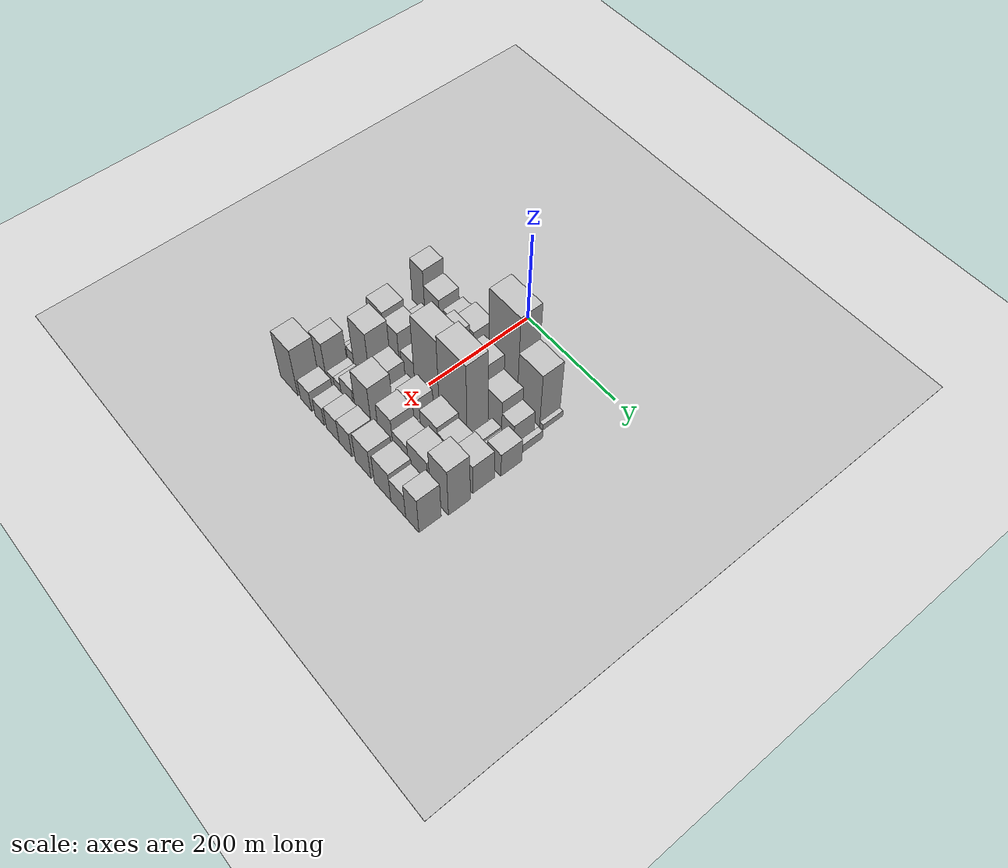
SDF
<sdf version="1.6">
 <world name="default">
  <include><name>ground_plane_1</name><uri>model://HANNAS_ground_plane</uri></include>
  <include>
   <name>ground_plane_2</name>
   <uri>model://HANNAS_ground_plane</uri>
   <pose>100 0 0  0 0 0</pose>
  </include>
  <model name="building_20">
   <static>1</static>
   <pose>100.0000 -129.2822 0 0.000000 0.000000 0.000000</pose>
   <link name="link">
    <pose>0 0 52.50 0 0 0</pose>
    <collision name="collision"><geometry><box><size>40.0000 32.5449 105.0000</size></box></geometry></collision>
    <visual name="visual">
     <cast_shadows>0</cast_shadows>
     <geometry><box><size>40.0000 32.5449 105.0000</size></box></geometry>
     <material>
      <script>
       <uri>model://HANNAS_wall/materials/scripts</uri>
       <uri>model://HANNAS_wall/materials/textures</uri>
       <name>vrc/HANNAS_wall</name>
      </script>
     </material>
    </visual>
   </link>
  </model>
  <model name="building_21">
   <static>1</static>
   <pose>100.0000 -93.9875 0 0.000000 0.000000 0.000000</pose>
   <link name="link">
    <pose>0 0 34.50 0 0 0</pose>
    <collision name="collision"><geometry><box><size>40.0000 38.0445 69.0000</size></box></geometry></collision>
    <visual name="visual">
     <cast_shadows>0</cast_shadows>
     <geometry><box><size>40.0000 38.0445 69.0000</size></box></geometry>
     <material>
      <script>
       <uri>model://HANNAS_wall/materials/scripts</uri>
       <uri>model://HANNAS_wall/materials/textures</uri>
       <name>vrc/HANNAS_wall</name>
      </script>
     </material>
    </visual>
   </link>
  </model>
  <model name="building_22">
   <static>1</static>
   <pose>100.0000 -49.4875 0 0.000000 0.000000 0.000000</pose>
   <link name="link">
    <pose>0 0 28.50 0 0 0</pose>
    <collision name="collision"><geometry><box><size>40.0000 30.9556 57.0000</size></box></geometry></collision>
    <visual name="visual">
     <cast_shadows>0</cast_shadows>
     <geometry><box><size>40.0000 30.9556 57.0000</size></box></geometry>
     <material>
      <script>
       <uri>model://HANNAS_wall/materials/scripts</uri>
       <uri>model://HANNAS_wall/materials/textures</uri>
       <name>vrc/HANNAS_wall</name>
      </script>
     </material>
    </visual>
   </link>
  </model>
  <model name="building_23">
   <static>1</static>
   <pose>100.0000 -12.2931 0 0.000000 0.000000 0.000000</pose>
   <link name="link">
    <pose>0 0 37.50 0 0 0</pose>
    <collision name="collision"><geometry><box><size>40.0000 43.4332 75.0000</size></box></geometry></collision>
    <visual name="visual">
     <cast_shadows>0</cast_shadows>
     <geometry><box><size>40.0000 43.4332 75.0000</size></box></geometry>
     <material>
      <script>
       <uri>model://HANNAS_wall/materials/scripts</uri>
       <uri>model://HANNAS_wall/materials/textures</uri>
       <name>vrc/HANNAS_wall</name>
      </script>
     </material>
    </visual>
   </link>
  </model>
  <model name="building_24">
   <static>1</static>
   <pose>100.0000 23.1443 0 0.000000 0.000000 0.000000</pose>
   <link name="link">
    <pose>0 0 7.50 0 0 0</pose>
    <collision name="collision"><geometry><box><size>40.0000 7.4417 15.0000</size></box></geometry></collision>
    <visual name="visual">
     <cast_shadows>0</cast_shadows>
     <geometry><box><size>40.0000 7.4417 15.0000</size></box></geometry>
     <material>
      <script>
       <uri>model://HANNAS_wall/materials/scripts</uri>
       <uri>model://HANNAS_wall/materials/textures</uri>
       <name>vrc/HANNAS_wall</name>
      </script>
     </material>
    </visual>
   </link>
  </model>
  <model name="building_25">
   <static>1</static>
   <pose>100.0000 32.5370 0 0.000000 0.000000 0.000000</pose>
   <link name="link">
    <pose>0 0 13.50 0 0 0</pose>
    <collision name="collision"><geometry><box><size>40.0000 11.3437 27.0000</size></box></geometry></collision>
    <visual name="visual">
     <cast_shadows>0</cast_shadows>
     <geometry><box><size>40.0000 11.3437 27.0000</size></box></geometry>
     <material>
      <script>
       <uri>model://HANNAS_wall/materials/scripts</uri>
       <uri>model://HANNAS_wall/materials/textures</uri>
       <name>vrc/HANNAS_wall</name>
      </script>
     </material>
    </visual>
   </link>
  </model>
  <model name="building_26">
   <static>1</static>
   <pose>100.0000 78.6718 0 0.000000 0.000000 0.000000</pose>
   <link name="link">
    <pose>0 0 109.50 0 0 0</pose>
    <collision name="collision"><geometry><box><size>40.0000 66.9260 219.0000</size></box></geometry></collision>
    <visual name="visual">
     <cast_shadows>0</cast_shadows>
     <geometry><box><size>40.0000 66.9260 219.0000</size></box></geometry>
     <material>
      <script>
       <uri>model://HANNAS_wall/materials/scripts</uri>
       <uri>model://HANNAS_wall/materials/textures</uri>
       <name>vrc/HANNAS_wall</name>
      </script>
     </material>
    </visual>
   </link>
  </model>
  <model name="building_27">
   <static>1</static>
   <pose>100.0000 137.7826 0 0.000000 0.000000 0.000000</pose>
   <link name="link">
    <pose>0 0 67.50 0 0 0</pose>
    <collision name="collision"><geometry><box><size>40.0000 51.2957 135.0000</size></box></geometry></collision>
    <visual name="visual">
     <cast_shadows>0</cast_shadows>
     <geometry><box><size>40.0000 51.2957 135.0000</size></box></geometry>
     <material>
      <script>
       <uri>model://HANNAS_wall/materials/scripts</uri>
       <uri>model://HANNAS_wall/materials/textures</uri>
       <name>vrc/HANNAS_wall</name>
      </script>
     </material>
    </visual>
   </link>
  </model>
  <model name="building_28">
   <static>1</static>
   <pose>100.0000 167.0437 0 0.000000 0.000000 0.000000</pose>
   <link name="link">
    <pose>0 0 7.50 0 0 0</pose>
    <collision name="collision"><geometry><box><size>40.0000 7.2264 15.0000</size></box></geometry></collision>
    <visual name="visual">
     <cast_shadows>0</cast_shadows>
     <geometry><box><size>40.0000 7.2264 15.0000</size></box></geometry>
     <material>
      <script>
       <uri>model://HANNAS_wall/materials/scripts</uri>
       <uri>model://HANNAS_wall/materials/textures</uri>
       <name>vrc/HANNAS_wall</name>
      </script>
     </material>
    </visual>
   </link>
  </model>
  <model name="building_66">
   <static>1</static>
   <pose>149.0000 -112.0971 0 0.000000 0.000000 0.000000</pose>
   <link name="link">
    <pose>0 0 9.00 0 0 0</pose>
    <collision name="collision"><geometry><box><size>40.0000 8.2434 18.0000</size></box></geometry></collision>
    <visual name="visual">
     <cast_shadows>0</cast_shadows>
     <geometry><box><size>40.0000 8.2434 18.0000</size></box></geometry>
     <material>
      <script>
       <uri>model://HANNAS_wall/materials/scripts</uri>
       <uri>model://HANNAS_wall/materials/textures</uri>
       <name>vrc/HANNAS_wall</name>
      </script>
     </material>
    </visual>
   </link>
  </model>
  <model name="building_67">
   <static>1</static>
   <pose>149.0000 -96.3185 0 0.000000 0.000000 0.000000</pose>
   <link name="link">
    <pose>0 0 19.50 0 0 0</pose>
    <collision name="collision"><geometry><box><size>40.0000 23.3137 39.0000</size></box></geometry></collision>
    <visual name="visual">
     <cast_shadows>0</cast_shadows>
     <geometry><box><size>40.0000 23.3137 39.0000</size></box></geometry>
     <material>
      <script>
       <uri>model://HANNAS_wall/materials/scripts</uri>
       <uri>model://HANNAS_wall/materials/textures</uri>
       <name>vrc/HANNAS_wall</name>
      </script>
     </material>
    </visual>
   </link>
  </model>
  <model name="building_68">
   <static>1</static>
   <pose>149.0000 -69.2419 0 0.000000 0.000000 0.000000</pose>
   <link name="link">
    <pose>0 0 30.00 0 0 0</pose>
    <collision name="collision"><geometry><box><size>40.0000 30.8396 60.0000</size></box></geometry></collision>
    <visual name="visual">
     <cast_shadows>0</cast_shadows>
     <geometry><box><size>40.0000 30.8396 60.0000</size></box></geometry>
     <material>
      <script>
       <uri>model://HANNAS_wall/materials/scripts</uri>
       <uri>model://HANNAS_wall/materials/textures</uri>
       <name>vrc/HANNAS_wall</name>
      </script>
     </material>
    </visual>
   </link>
  </model>
  <model name="building_69">
   <static>1</static>
   <pose>149.0000 -43.5027 0 0.000000 0.000000 0.000000</pose>
   <link name="link">
    <pose>0 0 18.00 0 0 0</pose>
    <collision name="collision"><geometry><box><size>40.0000 20.6387 36.0000</size></box></geometry></collision>
    <visual name="visual">
     <cast_shadows>0</cast_shadows>
     <geometry><box><size>40.0000 20.6387 36.0000</size></box></geometry>
     <material>
      <script>
       <uri>model://HANNAS_wall/materials/scripts</uri>
       <uri>model://HANNAS_wall/materials/textures</uri>
       <name>vrc/HANNAS_wall</name>
      </script>
     </material>
    </visual>
   </link>
  </model>
  <model name="building_70">
   <static>1</static>
   <pose>149.0000 -7.0303 0 0.000000 0.000000 0.000000</pose>
   <link name="link">
    <pose>0 0 52.50 0 0 0</pose>
    <collision name="collision"><geometry><box><size>40.0000 36.3060 105.0000</size></box></geometry></collision>
    <visual name="visual">
     <cast_shadows>0</cast_shadows>
     <geometry><box><size>40.0000 36.3060 105.0000</size></box></geometry>
     <material>
      <script>
       <uri>model://HANNAS_wall/materials/scripts</uri>
       <uri>model://HANNAS_wall/materials/textures</uri>
       <name>vrc/HANNAS_wall</name>
      </script>
     </material>
    </visual>
   </link>
  </model>
  <model name="building_71">
   <static>1</static>
   <pose>149.0000 24.2929 0 0.000000 0.000000 0.000000</pose>
   <link name="link">
    <pose>0 0 25.50 0 0 0</pose>
    <collision name="collision"><geometry><box><size>40.0000 26.3406 51.0000</size></box></geometry></collision>
    <visual name="visual">
     <cast_shadows>0</cast_shadows>
     <geometry><box><size>40.0000 26.3406 51.0000</size></box></geometry>
     <material>
      <script>
       <uri>model://HANNAS_wall/materials/scripts</uri>
       <uri>model://HANNAS_wall/materials/textures</uri>
       <name>vrc/HANNAS_wall</name>
      </script>
     </material>
    </visual>
   </link>
  </model>
  <model name="building_72">
   <static>1</static>
   <pose>149.0000 67.7533 0 0.000000 0.000000 0.000000</pose>
   <link name="link">
    <pose>0 0 58.50 0 0 0</pose>
    <collision name="collision"><geometry><box><size>40.0000 46.5802 117.0000</size></box></geometry></collision>
    <visual name="visual">
     <cast_shadows>0</cast_shadows>
     <geometry><box><size>40.0000 46.5802 117.0000</size></box></geometry>
     <material>
      <script>
       <uri>model://HANNAS_wall/materials/scripts</uri>
       <uri>model://HANNAS_wall/materials/textures</uri>
       <name>vrc/HANNAS_wall</name>
      </script>
     </material>
    </visual>
   </link>
  </model>
  <model name="building_73">
   <static>1</static>
   <pose>149.0000 112.6125 0 0.000000 0.000000 0.000000</pose>
   <link name="link">
    <pose>0 0 40.50 0 0 0</pose>
    <collision name="collision"><geometry><box><size>40.0000 43.1380 81.0000</size></box></geometry></collision>
    <visual name="visual">
     <cast_shadows>0</cast_shadows>
     <geometry><box><size>40.0000 43.1380 81.0000</size></box></geometry>
     <material>
      <script>
       <uri>model://HANNAS_wall/materials/scripts</uri>
       <uri>model://HANNAS_wall/materials/textures</uri>
       <name>vrc/HANNAS_wall</name>
      </script>
     </material>
    </visual>
   </link>
  </model>
  <model name="building_74">
   <static>1</static>
   <pose>149.0000 148.1438 0 0.000000 0.000000 0.000000</pose>
   <link name="link">
    <pose>0 0 25.50 0 0 0</pose>
    <collision name="collision"><geometry><box><size>40.0000 27.9247 51.0000</size></box></geometry></collision>
    <visual name="visual">
     <cast_shadows>0</cast_shadows>
     <geometry><box><size>40.0000 27.9247 51.0000</size></box></geometry>
     <material>
      <script>
       <uri>model://HANNAS_wall/materials/scripts</uri>
       <uri>model://HANNAS_wall/materials/textures</uri>
       <name>vrc/HANNAS_wall</name>
      </script>
     </material>
    </visual>
   </link>
  </model>
  <model name="building_75">
   <static>1</static>
   <pose>149.0000 175.8028 0 0.000000 0.000000 0.000000</pose>
   <link name="link">
    <pose>0 0 10.50 0 0 0</pose>
    <collision name="collision"><geometry><box><size>40.0000 9.3933 21.0000</size></box></geometry></collision>
    <visual name="visual">
     <cast_shadows>0</cast_shadows>
     <geometry><box><size>40.0000 9.3933 21.0000</size></box></geometry>
     <material>
      <script>
       <uri>model://HANNAS_wall/materials/scripts</uri>
       <uri>model://HANNAS_wall/materials/textures</uri>
       <name>vrc/HANNAS_wall</name>
      </script>
     </material>
    </visual>
   </link>
  </model>
  <model name="building_113">
   <static>1</static>
   <pose>198.0000 -132.3354 0 0.000000 0.000000 0.000000</pose>
   <link name="link">
    <pose>0 0 15.00 0 0 0</pose>
    <collision name="collision"><geometry><box><size>40.0000 16.0814 30.0000</size></box></geometry></collision>
    <visual name="visual">
     <cast_shadows>0</cast_shadows>
     <geometry><box><size>40.0000 16.0814 30.0000</size></box></geometry>
     <material>
      <script>
       <uri>model://HANNAS_wall/materials/scripts</uri>
       <uri>model://HANNAS_wall/materials/textures</uri>
       <name>vrc/HANNAS_wall</name>
      </script>
     </material>
    </visual>
   </link>
  </model>
  <model name="building_114">
   <static>1</static>
   <pose>198.0000 -104.4581 0 0.000000 0.000000 0.000000</pose>
   <link name="link">
    <pose>0 0 55.50 0 0 0</pose>
    <collision name="collision"><geometry><box><size>40.0000 39.6733 111.0000</size></box></geometry></collision>
    <visual name="visual">
     <cast_shadows>0</cast_shadows>
     <geometry><box><size>40.0000 39.6733 111.0000</size></box></geometry>
     <material>
      <script>
       <uri>model://HANNAS_wall/materials/scripts</uri>
       <uri>model://HANNAS_wall/materials/textures</uri>
       <name>vrc/HANNAS_wall</name>
      </script>
     </material>
    </visual>
   </link>
  </model>
  <model name="building_115">
   <static>1</static>
   <pose>198.0000 -67.0036 0 0.000000 0.000000 0.000000</pose>
   <link name="link">
    <pose>0 0 48.00 0 0 0</pose>
    <collision name="collision"><geometry><box><size>40.0000 35.2358 96.0000</size></box></geometry></collision>
    <visual name="visual">
     <cast_shadows>0</cast_shadows>
     <geometry><box><size>40.0000 35.2358 96.0000</size></box></geometry>
     <material>
      <script>
       <uri>model://HANNAS_wall/materials/scripts</uri>
       <uri>model://HANNAS_wall/materials/textures</uri>
       <name>vrc/HANNAS_wall</name>
      </script>
     </material>
    </visual>
   </link>
  </model>
  <model name="building_116">
   <static>1</static>
   <pose>198.0000 -28.3401 0 0.000000 0.000000 0.000000</pose>
   <link name="link">
    <pose>0 0 30.00 0 0 0</pose>
    <collision name="collision"><geometry><box><size>40.0000 32.0911 60.0000</size></box></geometry></collision>
    <visual name="visual">
     <cast_shadows>0</cast_shadows>
     <geometry><box><size>40.0000 32.0911 60.0000</size></box></geometry>
     <material>
      <script>
       <uri>model://HANNAS_wall/materials/scripts</uri>
       <uri>model://HANNAS_wall/materials/textures</uri>
       <name>vrc/HANNAS_wall</name>
      </script>
     </material>
    </visual>
   </link>
  </model>
  <model name="building_117">
   <static>1</static>
   <pose>198.0000 17.6815 0 0.000000 0.000000 0.000000</pose>
   <link name="link">
    <pose>0 0 90.00 0 0 0</pose>
    <collision name="collision"><geometry><box><size>40.0000 59.9519 180.0000</size></box></geometry></collision>
    <visual name="visual">
     <cast_shadows>0</cast_shadows>
     <geometry><box><size>40.0000 59.9519 180.0000</size></box></geometry>
     <material>
      <script>
       <uri>model://HANNAS_wall/materials/scripts</uri>
       <uri>model://HANNAS_wall/materials/textures</uri>
       <name>vrc/HANNAS_wall</name>
      </script>
     </material>
    </visual>
   </link>
  </model>
  <model name="building_118">
   <static>1</static>
   <pose>198.0000 80.4496 0 0.000000 0.000000 0.000000</pose>
   <link name="link">
    <pose>0 0 97.50 0 0 0</pose>
    <collision name="collision"><geometry><box><size>40.0000 65.5843 195.0000</size></box></geometry></collision>
    <visual name="visual">
     <cast_shadows>0</cast_shadows>
     <geometry><box><size>40.0000 65.5843 195.0000</size></box></geometry>
     <material>
      <script>
       <uri>model://HANNAS_wall/materials/scripts</uri>
       <uri>model://HANNAS_wall/materials/textures</uri>
       <name>vrc/HANNAS_wall</name>
      </script>
     </material>
    </visual>
   </link>
  </model>
  <model name="building_119">
   <static>1</static>
   <pose>198.0000 133.4168 0 0.000000 0.000000 0.000000</pose>
   <link name="link">
    <pose>0 0 18.00 0 0 0</pose>
    <collision name="collision"><geometry><box><size>40.0000 20.3501 36.0000</size></box></geometry></collision>
    <visual name="visual">
     <cast_shadows>0</cast_shadows>
     <geometry><box><size>40.0000 20.3501 36.0000</size></box></geometry>
     <material>
      <script>
       <uri>model://HANNAS_wall/materials/scripts</uri>
       <uri>model://HANNAS_wall/materials/textures</uri>
       <name>vrc/HANNAS_wall</name>
      </script>
     </material>
    </visual>
   </link>
  </model>
  <model name="building_120">
   <static>1</static>
   <pose>198.0000 151.4984 0 0.000000 0.000000 0.000000</pose>
   <link name="link">
    <pose>0 0 15.00 0 0 0</pose>
    <collision name="collision"><geometry><box><size>40.0000 15.8131 30.0000</size></box></geometry></collision>
    <visual name="visual">
     <cast_shadows>0</cast_shadows>
     <geometry><box><size>40.0000 15.8131 30.0000</size></box></geometry>
     <material>
      <script>
       <uri>model://HANNAS_wall/materials/scripts</uri>
       <uri>model://HANNAS_wall/materials/textures</uri>
       <name>vrc/HANNAS_wall</name>
      </script>
     </material>
    </visual>
   </link>
  </model>
  <model name="building_121">
   <static>1</static>
   <pose>198.0000 175.0517 0 0.000000 0.000000 0.000000</pose>
   <link name="link">
    <pose>0 0 30.00 0 0 0</pose>
    <collision name="collision"><geometry><box><size>40.0000 31.2934 60.0000</size></box></geometry></collision>
    <visual name="visual">
     <cast_shadows>0</cast_shadows>
     <geometry><box><size>40.0000 31.2934 60.0000</size></box></geometry>
     <material>
      <script>
       <uri>model://HANNAS_wall/materials/scripts</uri>
       <uri>model://HANNAS_wall/materials/textures</uri>
       <name>vrc/HANNAS_wall</name>
      </script>
     </material>
    </visual>
   </link>
  </model>
  <model name="building_171">
   <static>1</static>
   <pose>247.0000 -125.1564 0 0.000000 0.000000 0.000000</pose>
   <link name="link">
    <pose>0 0 12.00 0 0 0</pose>
    <collision name="collision"><geometry><box><size>40.0000 11.9221 24.0000</size></box></geometry></collision>
    <visual name="visual">
     <cast_shadows>0</cast_shadows>
     <geometry><box><size>40.0000 11.9221 24.0000</size></box></geometry>
     <material>
      <script>
       <uri>model://HANNAS_wall/materials/scripts</uri>
       <uri>model://HANNAS_wall/materials/textures</uri>
       <name>vrc/HANNAS_wall</name>
      </script>
     </material>
    </visual>
   </link>
  </model>
  <model name="building_172">
   <static>1</static>
   <pose>247.0000 -110.4530 0 0.000000 0.000000 0.000000</pose>
   <link name="link">
    <pose>0 0 16.50 0 0 0</pose>
    <collision name="collision"><geometry><box><size>40.0000 17.4846 33.0000</size></box></geometry></collision>
    <visual name="visual">
     <cast_shadows>0</cast_shadows>
     <geometry><box><size>40.0000 17.4846 33.0000</size></box></geometry>
     <material>
      <script>
       <uri>model://HANNAS_wall/materials/scripts</uri>
       <uri>model://HANNAS_wall/materials/textures</uri>
       <name>vrc/HANNAS_wall</name>
      </script>
     </material>
    </visual>
   </link>
  </model>
  <model name="building_173">
   <static>1</static>
   <pose>247.0000 -80.7673 0 0.000000 0.000000 0.000000</pose>
   <link name="link">
    <pose>0 0 63.00 0 0 0</pose>
    <collision name="collision"><geometry><box><size>40.0000 41.8869 126.0000</size></box></geometry></collision>
    <visual name="visual">
     <cast_shadows>0</cast_shadows>
     <geometry><box><size>40.0000 41.8869 126.0000</size></box></geometry>
     <material>
      <script>
       <uri>model://HANNAS_wall/materials/scripts</uri>
       <uri>model://HANNAS_wall/materials/textures</uri>
       <name>vrc/HANNAS_wall</name>
      </script>
     </material>
    </visual>
   </link>
  </model>
  <model name="building_174">
   <static>1</static>
   <pose>247.0000 -41.6172 0 0.000000 0.000000 0.000000</pose>
   <link name="link">
    <pose>0 0 31.50 0 0 0</pose>
    <collision name="collision"><geometry><box><size>40.0000 36.4134 63.0000</size></box></geometry></collision>
    <visual name="visual">
     <cast_shadows>0</cast_shadows>
     <geometry><box><size>40.0000 36.4134 63.0000</size></box></geometry>
     <material>
      <script>
       <uri>model://HANNAS_wall/materials/scripts</uri>
       <uri>model://HANNAS_wall/materials/textures</uri>
       <name>vrc/HANNAS_wall</name>
      </script>
     </material>
    </visual>
   </link>
  </model>
  <model name="building_175">
   <static>1</static>
   <pose>247.0000 -8.5970 0 0.000000 0.000000 0.000000</pose>
   <link name="link">
    <pose>0 0 18.00 0 0 0</pose>
    <collision name="collision"><geometry><box><size>40.0000 19.6269 36.0000</size></box></geometry></collision>
    <visual name="visual">
     <cast_shadows>0</cast_shadows>
     <geometry><box><size>40.0000 19.6269 36.0000</size></box></geometry>
     <material>
      <script>
       <uri>model://HANNAS_wall/materials/scripts</uri>
       <uri>model://HANNAS_wall/materials/textures</uri>
       <name>vrc/HANNAS_wall</name>
      </script>
     </material>
    </visual>
   </link>
  </model>
  <model name="building_176">
   <static>1</static>
   <pose>247.0000 27.2455 0 0.000000 0.000000 0.000000</pose>
   <link name="link">
    <pose>0 0 33.00 0 0 0</pose>
    <collision name="collision"><geometry><box><size>40.0000 36.0581 66.0000</size></box></geometry></collision>
    <visual name="visual">
     <cast_shadows>0</cast_shadows>
     <geometry><box><size>40.0000 36.0581 66.0000</size></box></geometry>
     <material>
      <script>
       <uri>model://HANNAS_wall/materials/scripts</uri>
       <uri>model://HANNAS_wall/materials/textures</uri>
       <name>vrc/HANNAS_wall</name>
      </script>
     </material>
    </visual>
   </link>
  </model>
  <model name="building_177">
   <static>1</static>
   <pose>247.0000 48.9995 0 0.000000 0.000000 0.000000</pose>
   <link name="link">
    <pose>0 0 7.50 0 0 0</pose>
    <collision name="collision"><geometry><box><size>40.0000 7.4499 15.0000</size></box></geometry></collision>
    <visual name="visual">
     <cast_shadows>0</cast_shadows>
     <geometry><box><size>40.0000 7.4499 15.0000</size></box></geometry>
     <material>
      <script>
       <uri>model://HANNAS_wall/materials/scripts</uri>
       <uri>model://HANNAS_wall/materials/textures</uri>
       <name>vrc/HANNAS_wall</name>
      </script>
     </material>
    </visual>
   </link>
  </model>
  <model name="building_178">
   <static>1</static>
   <pose>247.0000 61.1240 0 0.000000 0.000000 0.000000</pose>
   <link name="link">
    <pose>0 0 12.00 0 0 0</pose>
    <collision name="collision"><geometry><box><size>40.0000 10.7992 24.0000</size></box></geometry></collision>
    <visual name="visual">
     <cast_shadows>0</cast_shadows>
     <geometry><box><size>40.0000 10.7992 24.0000</size></box></geometry>
     <material>
      <script>
       <uri>model://HANNAS_wall/materials/scripts</uri>
       <uri>model://HANNAS_wall/materials/textures</uri>
       <name>vrc/HANNAS_wall</name>
      </script>
     </material>
    </visual>
   </link>
  </model>
  <model name="building_179">
   <static>1</static>
   <pose>247.0000 86.4545 0 0.000000 0.000000 0.000000</pose>
   <link name="link">
    <pose>0 0 39.00 0 0 0</pose>
    <collision name="collision"><geometry><box><size>40.0000 39.8616 78.0000</size></box></geometry></collision>
    <visual name="visual">
     <cast_shadows>0</cast_shadows>
     <geometry><box><size>40.0000 39.8616 78.0000</size></box></geometry>
     <material>
      <script>
       <uri>model://HANNAS_wall/materials/scripts</uri>
       <uri>model://HANNAS_wall/materials/textures</uri>
       <name>vrc/HANNAS_wall</name>
      </script>
     </material>
    </visual>
   </link>
  </model>
  <model name="building_180">
   <static>1</static>
   <pose>247.0000 124.9820 0 0.000000 0.000000 0.000000</pose>
   <link name="link">
    <pose>0 0 33.00 0 0 0</pose>
    <collision name="collision"><geometry><box><size>40.0000 37.1934 66.0000</size></box></geometry></collision>
    <visual name="visual">
     <cast_shadows>0</cast_shadows>
     <geometry><box><size>40.0000 37.1934 66.0000</size></box></geometry>
     <material>
      <script>
       <uri>model://HANNAS_wall/materials/scripts</uri>
       <uri>model://HANNAS_wall/materials/textures</uri>
       <name>vrc/HANNAS_wall</name>
      </script>
     </material>
    </visual>
   </link>
  </model>
  <model name="building_181">
   <static>1</static>
   <pose>247.0000 165.1188 0 0.000000 0.000000 0.000000</pose>
   <link name="link">
    <pose>0 0 37.50 0 0 0</pose>
    <collision name="collision"><geometry><box><size>40.0000 43.0802 75.0000</size></box></geometry></collision>
    <visual name="visual">
     <cast_shadows>0</cast_shadows>
     <geometry><box><size>40.0000 43.0802 75.0000</size></box></geometry>
     <material>
      <script>
       <uri>model://HANNAS_wall/materials/scripts</uri>
       <uri>model://HANNAS_wall/materials/textures</uri>
       <name>vrc/HANNAS_wall</name>
      </script>
     </material>
    </visual>
   </link>
  </model>
  <model name="building_221">
   <static>1</static>
   <pose>296.0000 -120.8029 0 0.000000 0.000000 0.000000</pose>
   <link name="link">
    <pose>0 0 48.00 0 0 0</pose>
    <collision name="collision"><geometry><box><size>40.0000 31.0125 96.0000</size></box></geometry></collision>
    <visual name="visual">
     <cast_shadows>0</cast_shadows>
     <geometry><box><size>40.0000 31.0125 96.0000</size></box></geometry>
     <material>
      <script>
       <uri>model://HANNAS_wall/materials/scripts</uri>
       <uri>model://HANNAS_wall/materials/textures</uri>
       <name>vrc/HANNAS_wall</name>
      </script>
     </material>
    </visual>
   </link>
  </model>
  <model name="building_222">
   <static>1</static>
   <pose>296.0000 -92.0000 0 0.000000 0.000000 0.000000</pose>
   <link name="link">
    <pose>0 0 16.50 0 0 0</pose>
    <collision name="collision"><geometry><box><size>40.0000 16.5932 33.0000</size></box></geometry></collision>
    <visual name="visual">
     <cast_shadows>0</cast_shadows>
     <geometry><box><size>40.0000 16.5932 33.0000</size></box></geometry>
     <material>
      <script>
       <uri>model://HANNAS_wall/materials/scripts</uri>
       <uri>model://HANNAS_wall/materials/textures</uri>
       <name>vrc/HANNAS_wall</name>
      </script>
     </material>
    </visual>
   </link>
  </model>
  <model name="building_223">
   <static>1</static>
   <pose>296.0000 -74.6004 0 0.000000 0.000000 0.000000</pose>
   <link name="link">
    <pose>0 0 18.00 0 0 0</pose>
    <collision name="collision"><geometry><box><size>40.0000 18.2060 36.0000</size></box></geometry></collision>
    <visual name="visual">
     <cast_shadows>0</cast_shadows>
     <geometry><box><size>40.0000 18.2060 36.0000</size></box></geometry>
     <material>
      <script>
       <uri>model://HANNAS_wall/materials/scripts</uri>
       <uri>model://HANNAS_wall/materials/textures</uri>
       <name>vrc/HANNAS_wall</name>
      </script>
     </material>
    </visual>
   </link>
  </model>
  <model name="building_224">
   <static>1</static>
   <pose>296.0000 -49.5214 0 0.000000 0.000000 0.000000</pose>
   <link name="link">
    <pose>0 0 28.50 0 0 0</pose>
    <collision name="collision"><geometry><box><size>40.0000 31.9521 57.0000</size></box></geometry></collision>
    <visual name="visual">
     <cast_shadows>0</cast_shadows>
     <geometry><box><size>40.0000 31.9521 57.0000</size></box></geometry>
     <material>
      <script>
       <uri>model://HANNAS_wall/materials/scripts</uri>
       <uri>model://HANNAS_wall/materials/textures</uri>
       <name>vrc/HANNAS_wall</name>
      </script>
     </material>
    </visual>
   </link>
  </model>
  <model name="building_225">
   <static>1</static>
   <pose>296.0000 -9.3671 0 0.000000 0.000000 0.000000</pose>
   <link name="link">
    <pose>0 0 57.00 0 0 0</pose>
    <collision name="collision"><geometry><box><size>40.0000 40.3563 114.0000</size></box></geometry></collision>
    <visual name="visual">
     <cast_shadows>0</cast_shadows>
     <geometry><box><size>40.0000 40.3563 114.0000</size></box></geometry>
     <material>
      <script>
       <uri>model://HANNAS_wall/materials/scripts</uri>
       <uri>model://HANNAS_wall/materials/textures</uri>
       <name>vrc/HANNAS_wall</name>
      </script>
     </material>
    </visual>
   </link>
  </model>
  <model name="building_226">
   <static>1</static>
   <pose>296.0000 14.4890 0 0.000000 0.000000 0.000000</pose>
   <link name="link">
    <pose>0 0 7.50 0 0 0</pose>
    <collision name="collision"><geometry><box><size>40.0000 7.3560 15.0000</size></box></geometry></collision>
    <visual name="visual">
     <cast_shadows>0</cast_shadows>
     <geometry><box><size>40.0000 7.3560 15.0000</size></box></geometry>
     <material>
      <script>
       <uri>model://HANNAS_wall/materials/scripts</uri>
       <uri>model://HANNAS_wall/materials/textures</uri>
       <name>vrc/HANNAS_wall</name>
      </script>
     </material>
    </visual>
   </link>
  </model>
  <model name="building_227">
   <static>1</static>
   <pose>296.0000 23.2992 0 0.000000 0.000000 0.000000</pose>
   <link name="link">
    <pose>0 0 10.50 0 0 0</pose>
    <collision name="collision"><geometry><box><size>40.0000 10.2644 21.0000</size></box></geometry></collision>
    <visual name="visual">
     <cast_shadows>0</cast_shadows>
     <geometry><box><size>40.0000 10.2644 21.0000</size></box></geometry>
     <material>
      <script>
       <uri>model://HANNAS_wall/materials/scripts</uri>
       <uri>model://HANNAS_wall/materials/textures</uri>
       <name>vrc/HANNAS_wall</name>
      </script>
     </material>
    </visual>
   </link>
  </model>
  <model name="building_228">
   <static>1</static>
   <pose>296.0000 46.3865 0 0.000000 0.000000 0.000000</pose>
   <link name="link">
    <pose>0 0 48.00 0 0 0</pose>
    <collision name="collision"><geometry><box><size>40.0000 35.9102 96.0000</size></box></geometry></collision>
    <visual name="visual">
     <cast_shadows>0</cast_shadows>
     <geometry><box><size>40.0000 35.9102 96.0000</size></box></geometry>
     <material>
      <script>
       <uri>model://HANNAS_wall/materials/scripts</uri>
       <uri>model://HANNAS_wall/materials/textures</uri>
       <name>vrc/HANNAS_wall</name>
      </script>
     </material>
    </visual>
   </link>
  </model>
  <model name="building_229">
   <static>1</static>
   <pose>296.0000 82.3014 0 0.000000 0.000000 0.000000</pose>
   <link name="link">
    <pose>0 0 34.50 0 0 0</pose>
    <collision name="collision"><geometry><box><size>40.0000 35.9196 69.0000</size></box></geometry></collision>
    <visual name="visual">
     <cast_shadows>0</cast_shadows>
     <geometry><box><size>40.0000 35.9196 69.0000</size></box></geometry>
     <material>
      <script>
       <uri>model://HANNAS_wall/materials/scripts</uri>
       <uri>model://HANNAS_wall/materials/textures</uri>
       <name>vrc/HANNAS_wall</name>
      </script>
     </material>
    </visual>
   </link>
  </model>
  <model name="building_230">
   <static>1</static>
   <pose>296.0000 123.4803 0 0.000000 0.000000 0.000000</pose>
   <link name="link">
    <pose>0 0 43.50 0 0 0</pose>
    <collision name="collision"><geometry><box><size>40.0000 46.4382 87.0000</size></box></geometry></collision>
    <visual name="visual">
     <cast_shadows>0</cast_shadows>
     <geometry><box><size>40.0000 46.4382 87.0000</size></box></geometry>
     <material>
      <script>
       <uri>model://HANNAS_wall/materials/scripts</uri>
       <uri>model://HANNAS_wall/materials/textures</uri>
       <name>vrc/HANNAS_wall</name>
      </script>
     </material>
    </visual>
   </link>
  </model>
  <model name="building_231">
   <static>1</static>
   <pose>296.0000 171.2193 0 0.000000 0.000000 0.000000</pose>
   <link name="link">
    <pose>0 0 61.50 0 0 0</pose>
    <collision name="collision"><geometry><box><size>40.0000 41.0397 123.0000</size></box></geometry></collision>
    <visual name="visual">
     <cast_shadows>0</cast_shadows>
     <geometry><box><size>40.0000 41.0397 123.0000</size></box></geometry>
     <material>
      <script>
       <uri>model://HANNAS_wall/materials/scripts</uri>
       <uri>model://HANNAS_wall/materials/textures</uri>
       <name>vrc/HANNAS_wall</name>
      </script>
     </material>
    </visual>
   </link>
  </model>
  <model name="building_271">
   <static>1</static>
   <pose>345.0000 -134.4039 0 0.000000 0.000000 0.000000</pose>
   <link name="link">
    <pose>0 0 58.50 0 0 0</pose>
    <collision name="collision"><geometry><box><size>40.0000 46.7121 117.0000</size></box></geometry></collision>
    <visual name="visual">
     <cast_shadows>0</cast_shadows>
     <geometry><box><size>40.0000 46.7121 117.0000</size></box></geometry>
     <material>
      <script>
       <uri>model://HANNAS_wall/materials/scripts</uri>
       <uri>model://HANNAS_wall/materials/textures</uri>
       <name>vrc/HANNAS_wall</name>
      </script>
     </material>
    </visual>
   </link>
  </model>
  <model name="building_272">
   <static>1</static>
   <pose>345.0000 -89.1384 0 0.000000 0.000000 0.000000</pose>
   <link name="link">
    <pose>0 0 25.50 0 0 0</pose>
    <collision name="collision"><geometry><box><size>40.0000 29.8189 51.0000</size></box></geometry></collision>
    <visual name="visual">
     <cast_shadows>0</cast_shadows>
     <geometry><box><size>40.0000 29.8189 51.0000</size></box></geometry>
     <material>
      <script>
       <uri>model://HANNAS_wall/materials/scripts</uri>
       <uri>model://HANNAS_wall/materials/textures</uri>
       <name>vrc/HANNAS_wall</name>
      </script>
     </material>
    </visual>
   </link>
  </model>
  <model name="building_273">
   <static>1</static>
   <pose>345.0000 -54.4281 0 0.000000 0.000000 0.000000</pose>
   <link name="link">
    <pose>0 0 22.50 0 0 0</pose>
    <collision name="collision"><geometry><box><size>40.0000 23.6016 45.0000</size></box></geometry></collision>
    <visual name="visual">
     <cast_shadows>0</cast_shadows>
     <geometry><box><size>40.0000 23.6016 45.0000</size></box></geometry>
     <material>
      <script>
       <uri>model://HANNAS_wall/materials/scripts</uri>
       <uri>model://HANNAS_wall/materials/textures</uri>
       <name>vrc/HANNAS_wall</name>
      </script>
     </material>
    </visual>
   </link>
  </model>
  <model name="building_274">
   <static>1</static>
   <pose>345.0000 -20.5172 0 0.000000 0.000000 0.000000</pose>
   <link name="link">
    <pose>0 0 28.50 0 0 0</pose>
    <collision name="collision"><geometry><box><size>40.0000 32.2202 57.0000</size></box></geometry></collision>
    <visual name="visual">
     <cast_shadows>0</cast_shadows>
     <geometry><box><size>40.0000 32.2202 57.0000</size></box></geometry>
     <material>
      <script>
       <uri>model://HANNAS_wall/materials/scripts</uri>
       <uri>model://HANNAS_wall/materials/textures</uri>
       <name>vrc/HANNAS_wall</name>
      </script>
     </material>
    </visual>
   </link>
  </model>
  <model name="building_275">
   <static>1</static>
   <pose>345.0000 11.4172 0 0.000000 0.000000 0.000000</pose>
   <link name="link">
    <pose>0 0 31.50 0 0 0</pose>
    <collision name="collision"><geometry><box><size>40.0000 31.6486 63.0000</size></box></geometry></collision>
    <visual name="visual">
     <cast_shadows>0</cast_shadows>
     <geometry><box><size>40.0000 31.6486 63.0000</size></box></geometry>
     <material>
      <script>
       <uri>model://HANNAS_wall/materials/scripts</uri>
       <uri>model://HANNAS_wall/materials/textures</uri>
       <name>vrc/HANNAS_wall</name>
      </script>
     </material>
    </visual>
   </link>
  </model>
  <model name="building_276">
   <static>1</static>
   <pose>345.0000 54.5468 0 0.000000 0.000000 0.000000</pose>
   <link name="link">
    <pose>0 0 37.50 0 0 0</pose>
    <collision name="collision"><geometry><box><size>40.0000 38.6106 75.0000</size></box></geometry></collision>
    <visual name="visual">
     <cast_shadows>0</cast_shadows>
     <geometry><box><size>40.0000 38.6106 75.0000</size></box></geometry>
     <material>
      <script>
       <uri>model://HANNAS_wall/materials/scripts</uri>
       <uri>model://HANNAS_wall/materials/textures</uri>
       <name>vrc/HANNAS_wall</name>
      </script>
     </material>
    </visual>
   </link>
  </model>
  <model name="building_277">
   <static>1</static>
   <pose>345.0000 101.5762 0 0.000000 0.000000 0.000000</pose>
   <link name="link">
    <pose>0 0 37.50 0 0 0</pose>
    <collision name="collision"><geometry><box><size>40.0000 39.4482 75.0000</size></box></geometry></collision>
    <visual name="visual">
     <cast_shadows>0</cast_shadows>
     <geometry><box><size>40.0000 39.4482 75.0000</size></box></geometry>
     <material>
      <script>
       <uri>model://HANNAS_wall/materials/scripts</uri>
       <uri>model://HANNAS_wall/materials/textures</uri>
       <name>vrc/HANNAS_wall</name>
      </script>
     </material>
    </visual>
   </link>
  </model>
  <model name="building_278">
   <static>1</static>
   <pose>345.0000 138.6763 0 0.000000 0.000000 0.000000</pose>
   <link name="link">
    <pose>0 0 31.50 0 0 0</pose>
    <collision name="collision"><geometry><box><size>40.0000 34.7520 63.0000</size></box></geometry></collision>
    <visual name="visual">
     <cast_shadows>0</cast_shadows>
     <geometry><box><size>40.0000 34.7520 63.0000</size></box></geometry>
     <material>
      <script>
       <uri>model://HANNAS_wall/materials/scripts</uri>
       <uri>model://HANNAS_wall/materials/textures</uri>
       <name>vrc/HANNAS_wall</name>
      </script>
     </material>
    </visual>
   </link>
  </model>
  <model name="building_279">
   <static>1</static>
   <pose>345.0000 171.3304 0 0.000000 0.000000 0.000000</pose>
   <link name="link">
    <pose>0 0 46.50 0 0 0</pose>
    <collision name="collision"><geometry><box><size>40.0000 30.5562 93.0000</size></box></geometry></collision>
    <visual name="visual">
     <cast_shadows>0</cast_shadows>
     <geometry><box><size>40.0000 30.5562 93.0000</size></box></geometry>
     <material>
      <script>
       <uri>model://HANNAS_wall/materials/scripts</uri>
       <uri>model://HANNAS_wall/materials/textures</uri>
       <name>vrc/HANNAS_wall</name>
      </script>
     </material>
    </visual>
   </link>
  </model>
 </world>
</sdf>
